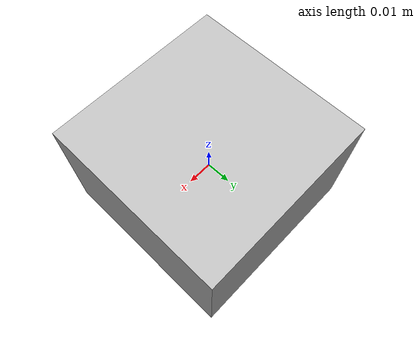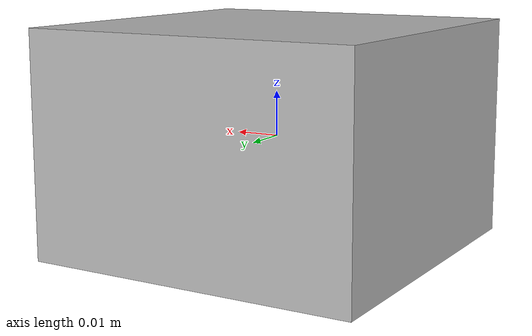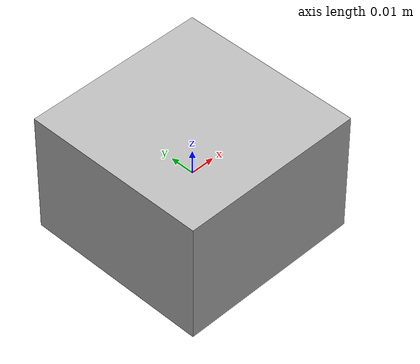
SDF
<?xml version="1.0"?>
<sdf version="1.7">
  <model name="user_cursor">
    <link name="user_cursor">
      <inertial>
        <pose>0 0 0 0 0 0</pose>
        <mass>1</mass>
        <!-- TODO(eric.cousineau): Use better inertia. -->
        <inertia>
          <ixx>0.1</ixx>
          <ixy> 0 </ixy>
          <ixz> 0 </ixz>
          <iyy>0.1</iyy>
          <iyz> 0 </iyz>
          <izz>0.1</izz>
        </inertia>
      </inertial>
      <visual name="visual">
        <geometry>
          <box>
            <size>0.075 0.075 0.05</size>
          </box>
        </geometry>
      </visual>
      <collision name="collision">
        <geometry>
          <box>
            <size>0.075 0.075 0.05</size>
          </box>
        </geometry>
        <!-- N.B. Naively estimated properties. -->
        <drake:proximity_properties>
          <drake:rigid_hydroelastic/>
          <drake:mu_dynamic>0.5</drake:mu_dynamic>
          <drake:mu_static>0.5</drake:mu_static>
          <drake:hunt_crossley_dissipation>1.25</drake:hunt_crossley_dissipation>
          <drake:mesh_resolution_hint>0.005</drake:mesh_resolution_hint>
        </drake:proximity_properties>
      </collision>
    </link>
  </model>
</sdf>
